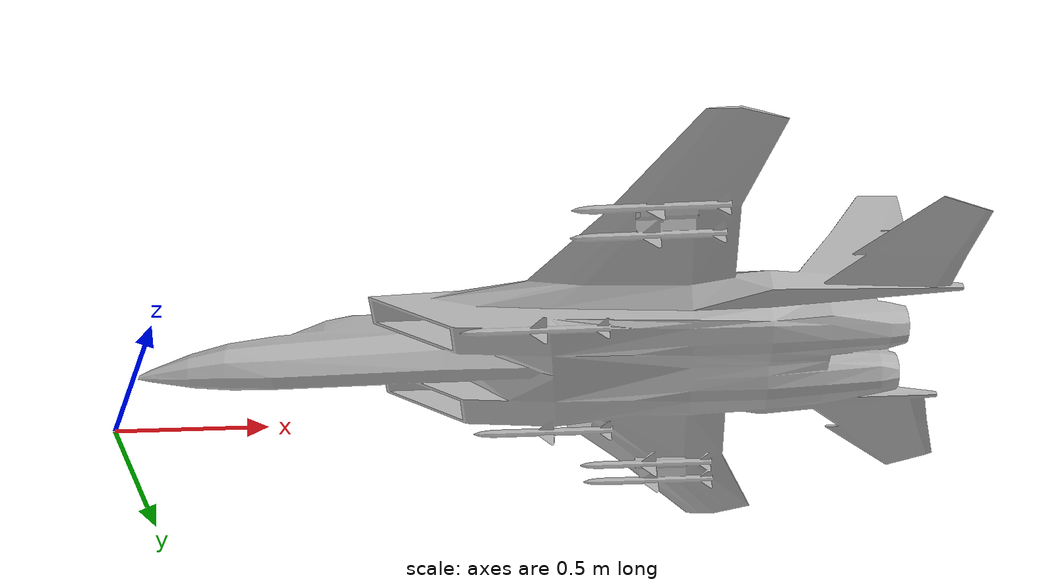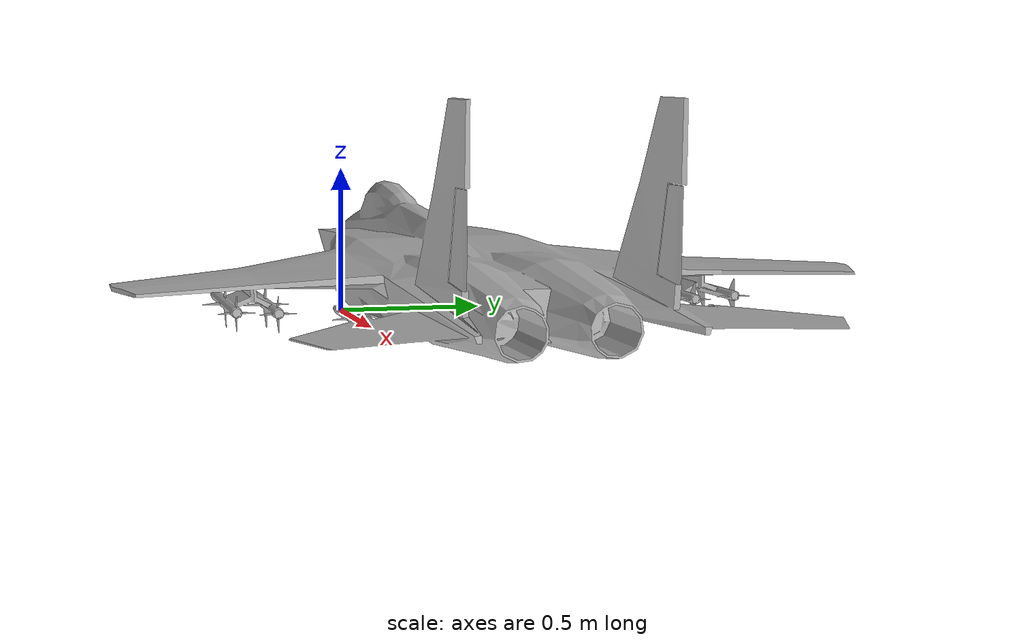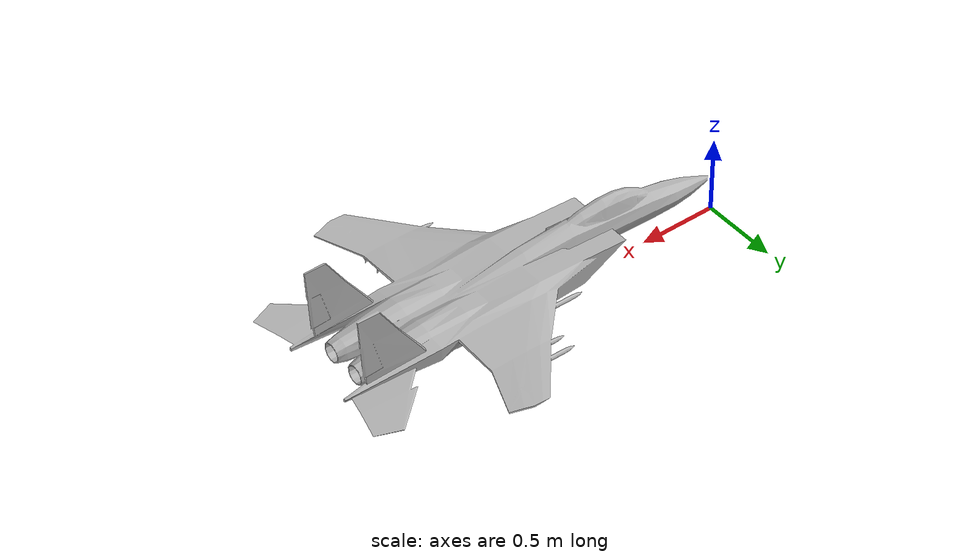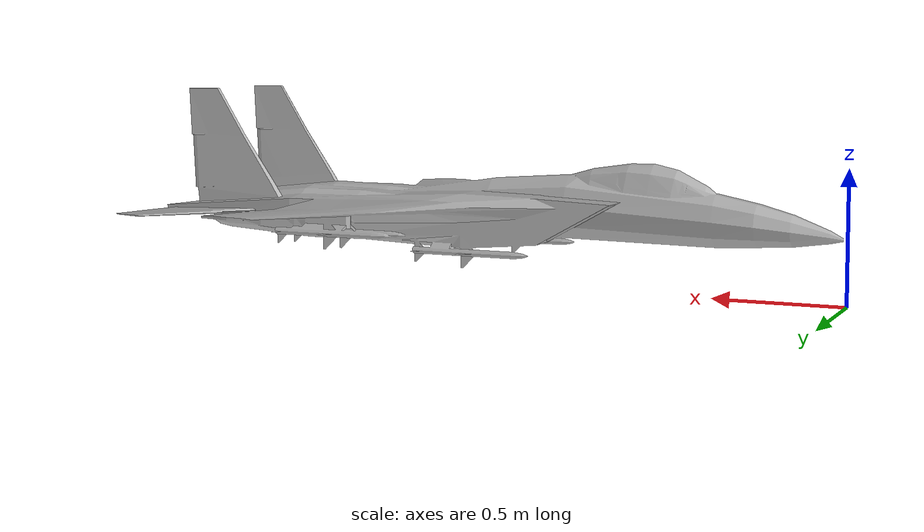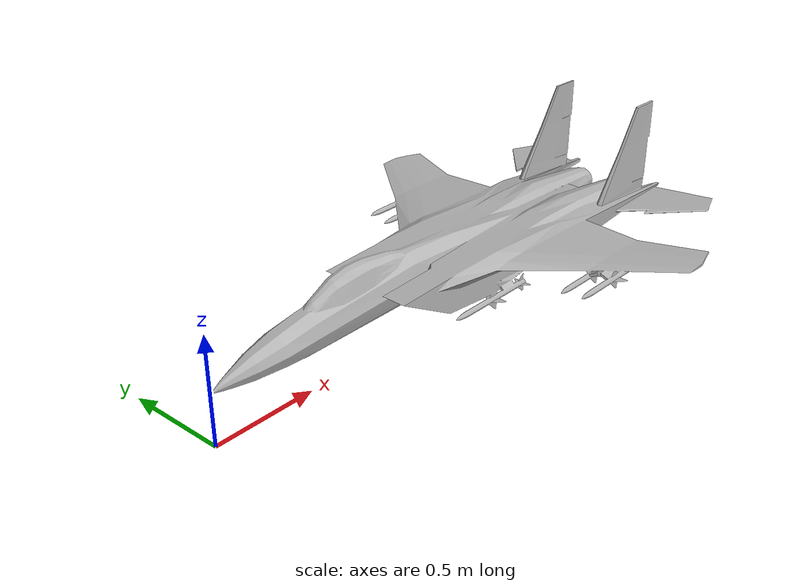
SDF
<?xml version="1.0" ?>
<sdf version="1.5">
<model name="F15scaled">
  <static>true</static>
  <link name="F15scaled_link">

  <visual name="F15scaled">
    <pose>0 0 0 0 0 0</pose>
    <geometry>
      <mesh><uri>model://F15scaled/meshes/F15scaled.stl
	</uri><scale>1.0 1.0 1.0</scale></mesh>
    </geometry>
  </visual>

  <collision name="F15scaled">
    <pose>0 0 0 0 0 0</pose>
    <geometry>
      <mesh><uri>model://F15scaled/meshes/F15scaled.stl</uri><scale>1.0 1.0 1.0 </scale></mesh>
    </geometry>
  </collision>

  </link>
</model>
</sdf>
